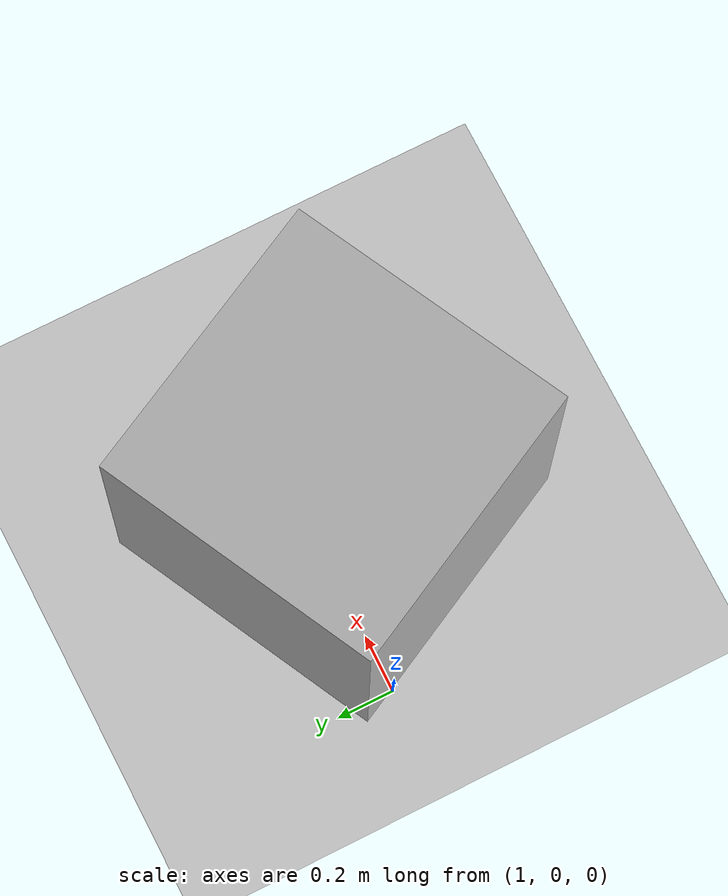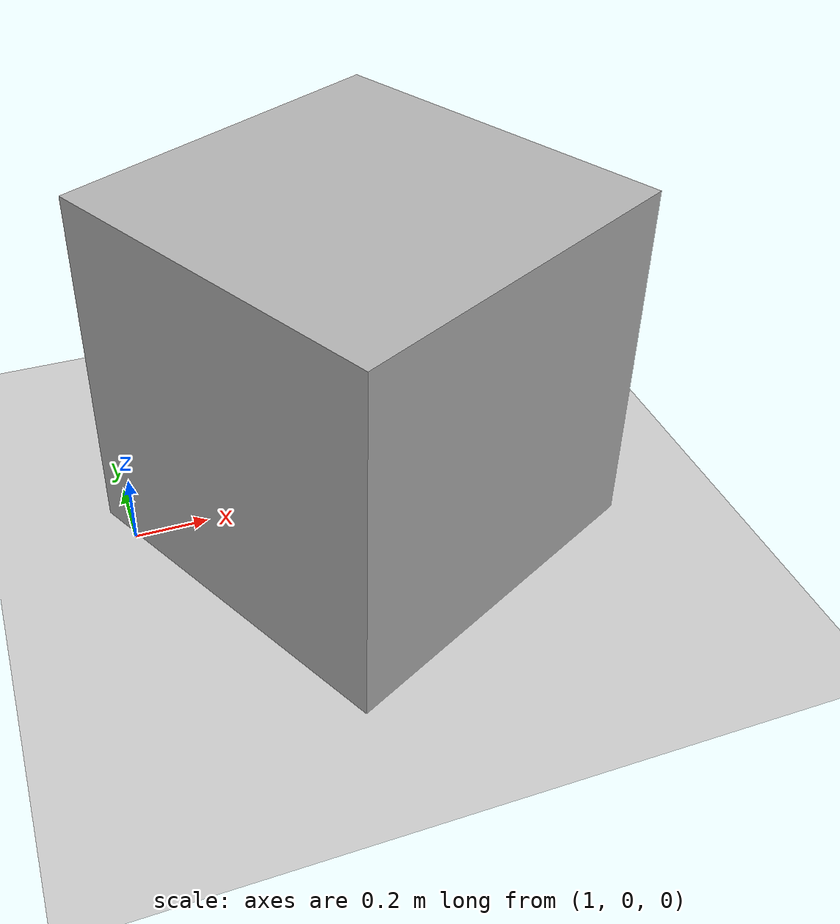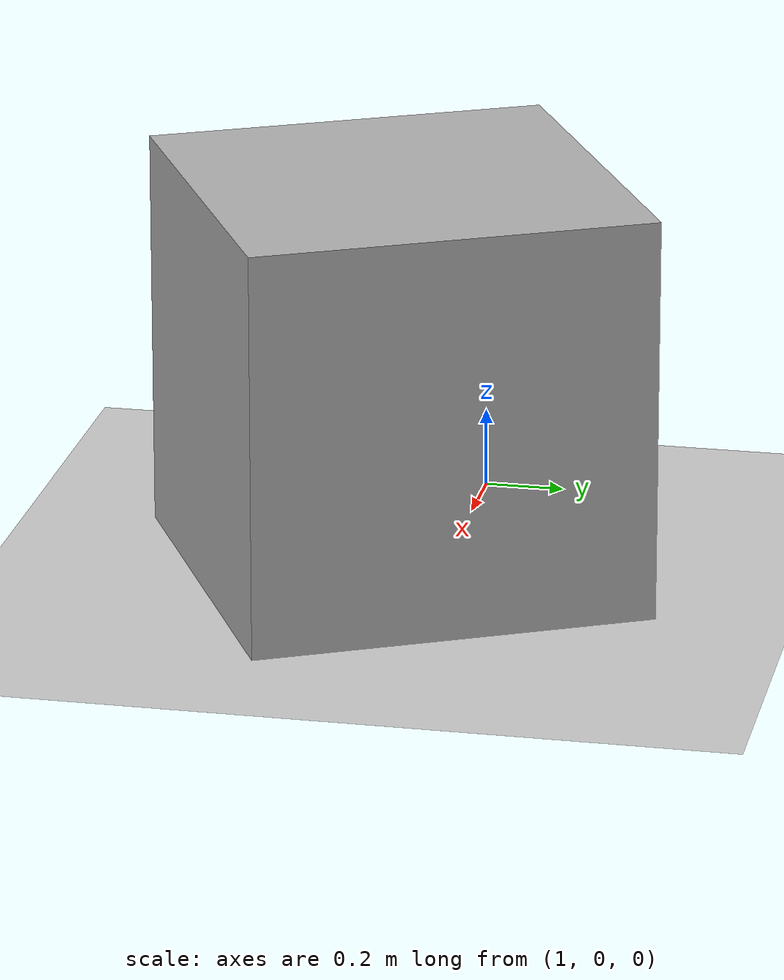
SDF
<sdf version='1.10'>
  <world name='test'>
    <physics type='ode'>
      <max_step_size>0.0040000000000000001</max_step_size>
      <real_time_factor>1</real_time_factor>
      <real_time_update_rate>250</real_time_update_rate>
    </physics>
    <gravity>0 0 -9.8000000000000007</gravity>
    <magnetic_field>6.0000000000000002e-06 2.3e-05 -4.1999999999999998e-05</magnetic_field>
    <atmosphere type='adiabatic'/>
    <scene>
      <grid>false</grid>
      <ambient>0.400000006 0.400000006 0.400000006 1</ambient>
      <background>0.699999988 0.699999988 0.699999988 1</background>
      <shadows>true</shadows>
    </scene>
    <spherical_coordinates>
      <surface_model>EARTH_WGS84</surface_model>
      <world_frame_orientation>ENU</world_frame_orientation>
      <latitude_deg>47.397971057728974</latitude_deg>
      <longitude_deg>8.5461637398001464</longitude_deg>
      <elevation>0</elevation>
      <heading_deg>0</heading_deg>
    </spherical_coordinates>
    <model name='ground_plane'>
      <static>true</static>
      <link name='link'>
        <collision name='collision'>
          <geometry>
            <plane>
              <normal>0 0 1</normal>
              <size>1 1</size>
            </plane>
          </geometry>
          <surface>
            <friction>
              <ode/>
            </friction>
            <bounce/>
            <contact/>
          </surface>
        </collision>
        <visual name='visual'>
          <geometry>
            <plane>
              <normal>0 0 1</normal>
              <size>500 500</size>
            </plane>
          </geometry>
          <material>
            <ambient>0.800000012 0.800000012 0.800000012 1</ambient>
            <diffuse>0.800000012 0.800000012 0.800000012 1</diffuse>
            <specular>0.800000012 0.800000012 0.800000012 1</specular>
          </material>
        </visual>
        <pose>0 0 0 0 0 0</pose>
        <inertial>
          <pose>0 0 0 0 0 0</pose>
          <mass>1</mass>
          <inertia>
            <ixx>1</ixx>
            <ixy>0</ixy>
            <ixz>0</ixz>
            <iyy>1</iyy>
            <iyz>0</iyz>
            <izz>1</izz>
          </inertia>
        </inertial>
        <enable_wind>false</enable_wind>
      </link>
      <pose>0 0 0 0 0 0</pose>
      <self_collide>false</self_collide>
    </model>

    <model name='box'>
      <pose>1.6199999999999999 -0.099999999999999936 0.49999999843196863 -1.3406836108838455e-19 -4.4987835718282293e-20 2.0400000000000005</pose>
      <link name='box_link'>
        <inertial>
          <inertia>
            <ixx>0.16666</ixx>
            <ixy>0</ixy>
            <ixz>0</ixz>
            <iyy>0.16666</iyy>
            <iyz>0</iyz>
            <izz>0.16666</izz>
          </inertia>
          <mass>1</mass>
          <pose>0 0 0 0 0 0</pose>
        </inertial>
        <collision name='box_collision'>
          <geometry>
            <box>
              <size>1 1 1</size>
            </box>
          </geometry>
          <surface>
            <friction>
              <ode/>
            </friction>
            <bounce/>
            <contact/>
          </surface>
        </collision>
        <visual name='box_visual'>
          <geometry>
            <box>
              <size>1 1 1</size>
            </box>
          </geometry>
          <material>
            <ambient>0.300000012 0.300000012 0.300000012 1</ambient>
            <diffuse>0.699999988 0.699999988 0.699999988 1</diffuse>
            <specular>1 1 1 1</specular>
          </material>
        </visual>
        <pose>0 0 0 0 0 0</pose>
        <enable_wind>false</enable_wind>
      </link>
      <static>false</static>
      <self_collide>false</self_collide>
    </model>
    <light name='sunUTC' type='directional'>
      <pose>0 0 500 0 0 0</pose>
      <cast_shadows>true</cast_shadows>
      <intensity>1</intensity>
      <direction>0.001 0.625 -0.78000000000000003</direction>
      <diffuse>0.903999984 0.903999984 0.903999984 1</diffuse>
      <specular>0.270999998 0.270999998 0.270999998 1</specular>
      <attenuation>
        <range>2000</range>
        <linear>0</linear>
        <constant>1</constant>
        <quadratic>0</quadratic>
      </attenuation>
      <spot>
        <inner_angle>0</inner_angle>
        <outer_angle>0</outer_angle>
        <falloff>0</falloff>
      </spot>
    </light>
  </world>
</sdf>
